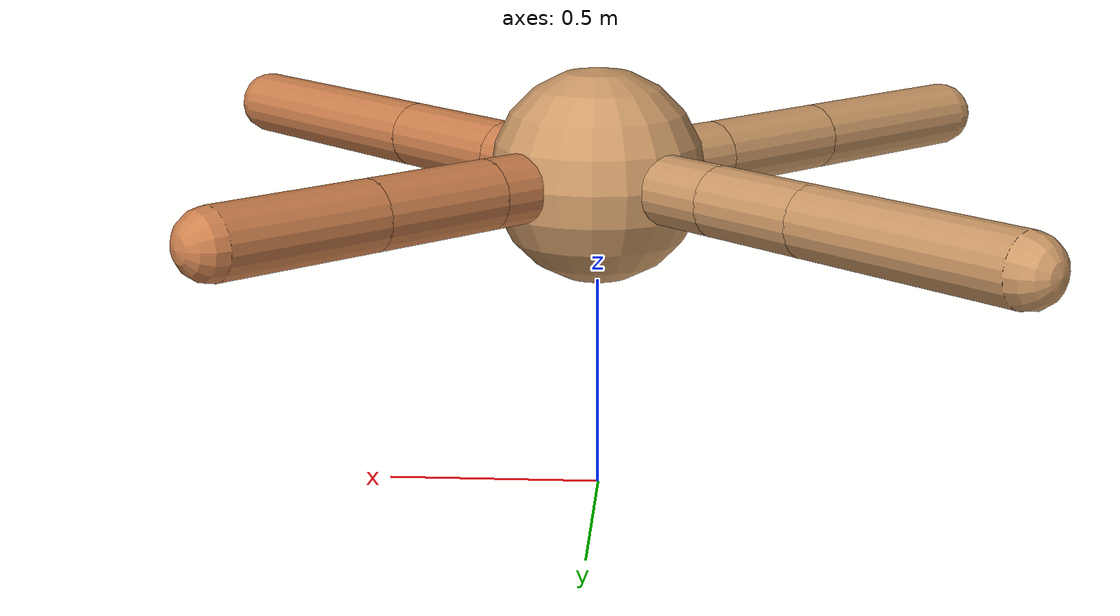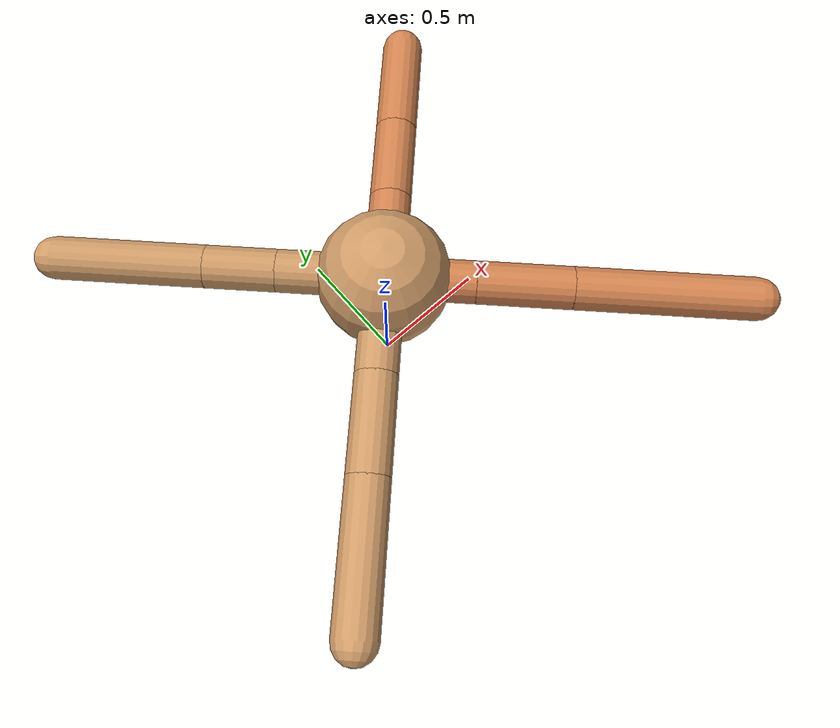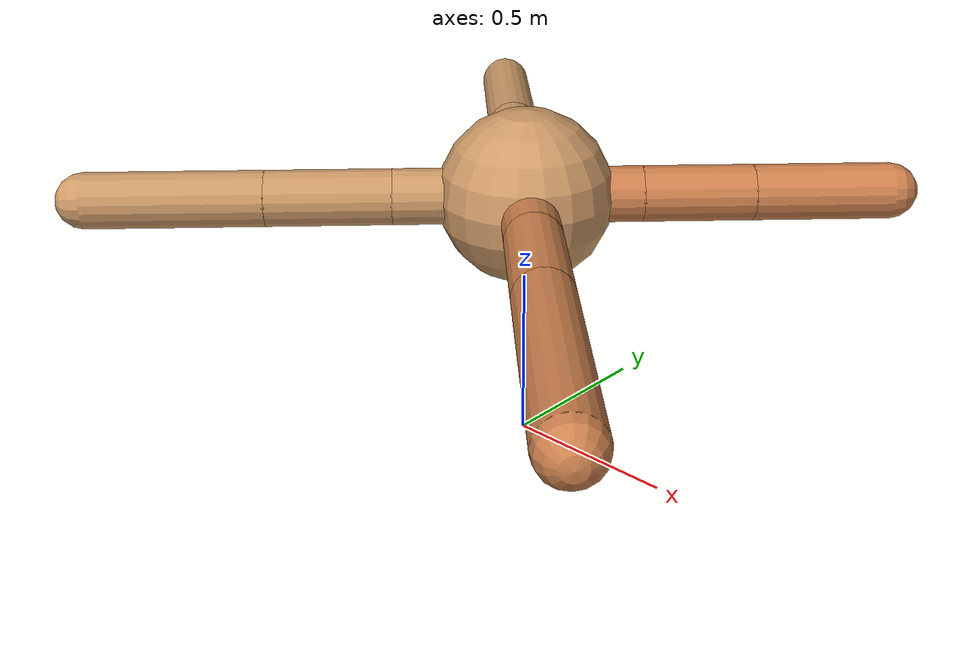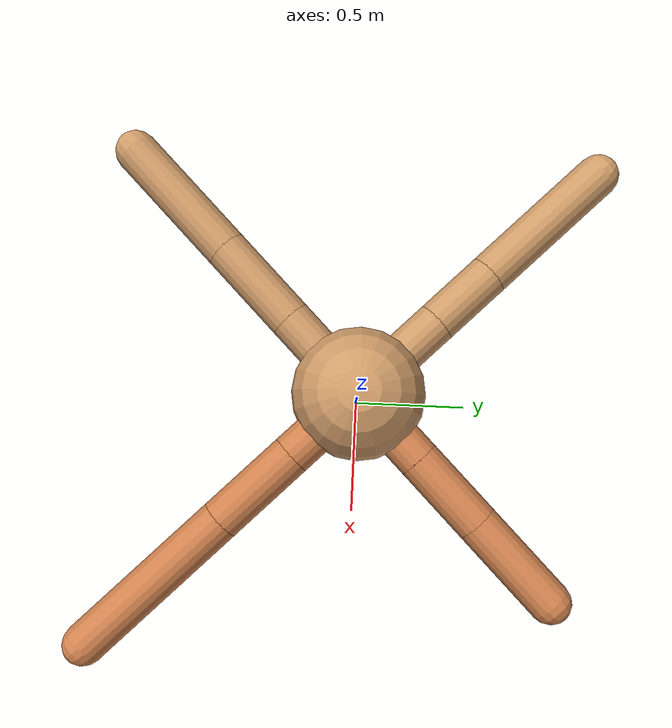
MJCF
<mujoco model="ant">
  <compiler angle="degree" coordinate="local" inertiafromgeom="true" />
  <option integrator="RK4" timestep="0.01" />
  <custom>
    <numeric data="0.0 0.0 0.55 1.0 0.0 0.0 0.0 0.0 1.0 0.0 -1.0 0.0 -1.0 0.0 1.0" name="init_qpos" />
  </custom>
  <default>
    <joint armature="1" damping="1" limited="true" />
    <geom conaffinity="0" condim="3" density="5.0" friction="1.5 0.1 0.1" margin="0.01" rgba="0.8 0.6 0.4 1" />
  </default>
  <worldbody>
    <body name="torso" pos="0 0 0.75">
      <geom name="torso_geom" pos="0 0 0" size="0.25" type="sphere" />

      <body name="front_left_leg" pos="0 0 0">
        <geom fromto="0.0 0.0 0.0 0.2330167505601967 0.2330167505601967 0.0" name="aux_1_geom" size="0.08" type="capsule" rgba=".8 .5 .3 1" />
        <body name="aux_1" pos="0.2330167505601967 0.2330167505601967 0.0">
          <joint axis="0 0 1" name="hip_1" pos="0.0 0.0 0.0" range="-40 40" type="hinge" />
          <geom fromto="0.0 0.0 0.0 0.2225348728754308 0.2225348728754308 0.0" name="left_leg_geom" size="0.08" type="capsule" rgba=".8 .5 .3 1" />
          <body pos="0.2225348728754308 0.2225348728754308 0.0" name="front_left_foot">
            <joint axis="-1 1 0" name="ankle_1" pos="0.0 0.0 0.0" range="30 100" type="hinge" />
            <geom fromto="0.0 0.0 0.0 0.2781375414545423 0.2781375414545423 0.0" name="left_ankle_geom" size="0.08" type="capsule" rgba=".8 .5 .3 1" />
          </body>
        </body>
      </body>
      <body name="front_right_leg" pos="0 0 0">
        <geom fromto="0.0 0.0 0.0 -0.2784784290827543 0.2784784290827543 0.0" name="aux_2_geom" size="0.08" type="capsule" />
        <body name="aux_2" pos="-0.2784784290827543 0.2784784290827543 0.0">
          <joint axis="0 0 1" name="hip_2" pos="0.0 0.0 0.0" range="-40 40" type="hinge" />
          <geom fromto="0.0 0.0 0.0 -0.18654583938810704 0.18654583938810704 0.0" name="right_leg_geom" size="0.08" type="capsule" />
          <body pos="-0.18654583938810704 0.18654583938810704 0.0" name="front_right_foot">
            <joint axis="1 1 0" name="ankle_2" pos="0.0 0.0 0.0" range="-100 -30" type="hinge" />
            <geom fromto="0.0 0.0 0.0 -0.3951031283927373 0.3951031283927373 0.0" name="right_ankle_geom" size="0.08" type="capsule" />
          </body>
        </body>
      </body>
      <body name="left_back_leg" pos="0 0 0">
        <geom fromto="0.0 0.0 0.0 -0.26574326026993217 -0.26574326026993217 0.0" name="aux_3_geom" size="0.08" type="capsule" />
        <body name="aux_3" pos="-0.26574326026993217 -0.26574326026993217 0.0">
          <joint axis="0 0 1" name="hip_3" pos="0.0 0.0 0.0" range="-40 40" type="hinge" />
          <geom fromto="0.0 0.0 0.0 -0.25154756357979435 -0.25154756357979435 0.0" name="back_leg_geom" size="0.08" type="capsule" />
          <body pos="-0.25154756357979435 -0.25154756357979435 0.0" name="left_back_foot">
            <joint axis="-1 1 0" name="ankle_3" pos="0.0 0.0 0.0" range="-100 -30" type="hinge" />
            <geom fromto="0.0 0.0 0.0 -0.35686722353839695 -0.35686722353839695 0.0" name="third_ankle_geom" size="0.08" type="capsule" />
          </body>
        </body>
      </body>
      <body name="right_back_leg" pos="0 0 0">
        <geom fromto="0.0 0.0 0.0 0.2377377926103979 -0.2377377926103979 0.0" name="aux_4_geom" size="0.08" type="capsule" rgba=".8 .5 .3 1" />
        <body name="aux_4" pos="0.2377377926103979 -0.2377377926103979 0.0">
          <joint axis="0 0 1" name="hip_4" pos="0.0 0.0 0.0" range="-40 40" type="hinge" />
          <geom fromto="0.0 0.0 0.0 0.24937439046382426 -0.24937439046382426 0.0" name="rightback_leg_geom" size="0.08" type="capsule" rgba=".8 .5 .3 1" />
          <body pos="0.24937439046382426 -0.24937439046382426 0.0" name="right_back_foot">
            <joint axis="1 1 0" name="ankle_4" pos="0.0 0.0 0.0" range="30 100" type="hinge" />
            <geom fromto="0.0 0.0 0.0 0.4715675328585802 -0.4715675328585802 0.0" name="fourth_ankle_geom" size="0.08" type="capsule" rgba=".8 .5 .3 1" />
          </body>
        </body>
      </body>
    </body>
  </worldbody>
  <actuator>
    <motor ctrllimited="true" ctrlrange="-1.0 1.0" joint="hip_4" gear="150" />
    <motor ctrllimited="true" ctrlrange="-1.0 1.0" joint="ankle_4" gear="150" />
    <motor ctrllimited="true" ctrlrange="-1.0 1.0" joint="hip_1" gear="150" />
    <motor ctrllimited="true" ctrlrange="-1.0 1.0" joint="ankle_1" gear="150" />
    <motor ctrllimited="true" ctrlrange="-1.0 1.0" joint="hip_2" gear="150" />
    <motor ctrllimited="true" ctrlrange="-1.0 1.0" joint="ankle_2" gear="150" />
    <motor ctrllimited="true" ctrlrange="-1.0 1.0" joint="hip_3" gear="150" />
    <motor ctrllimited="true" ctrlrange="-1.0 1.0" joint="ankle_3" gear="150" />
  </actuator>
</mujoco>
